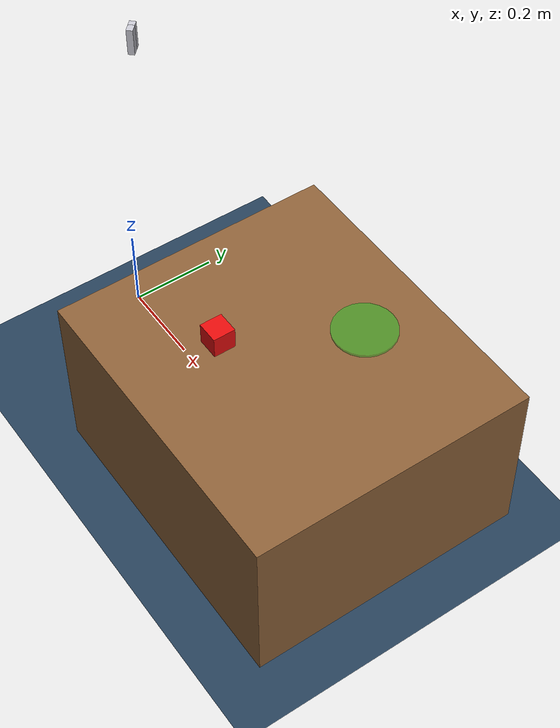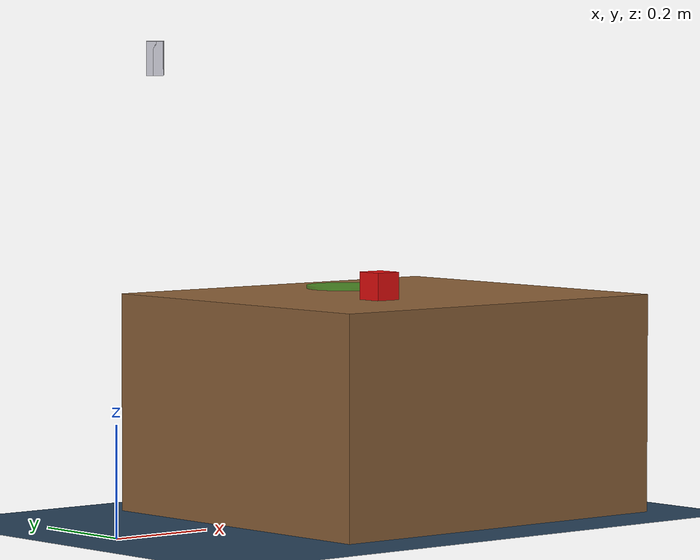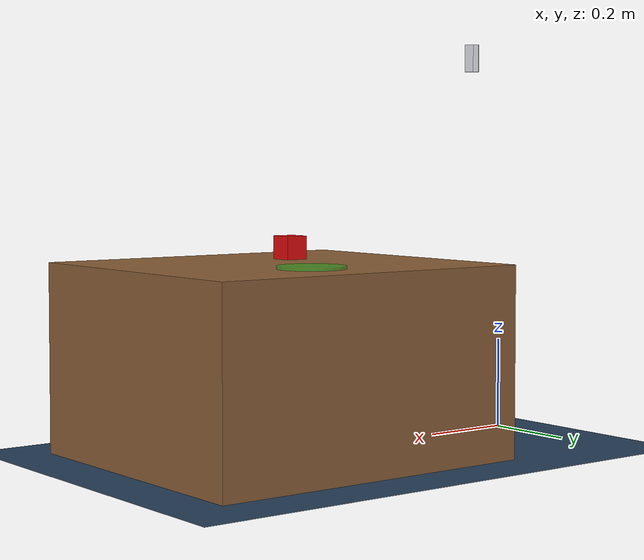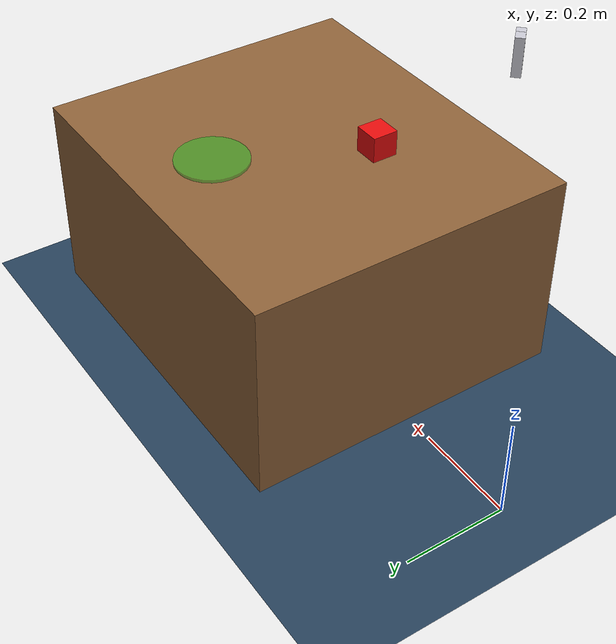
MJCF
<mujoco model="panda pick place">

  <include file="panda.xml"/>

  <statistic center="0.45 0 0.45" extent="1.2"/>

  <visual>
    <headlight diffuse="0.6 0.6 0.6" ambient="0.3 0.3 0.3" specular="0 0 0"/>
    <rgba haze="0.15 0.25 0.35 1"/>
    <global azimuth="120" elevation="-20"/>
  </visual>

  <asset>
    <texture type="skybox" builtin="gradient" rgb1="0.3 0.5 0.7" rgb2="0 0 0" width="512" height="3072"/>

    <texture type="2d" name="groundplane" builtin="checker" mark="edge"
             rgb1="0.2 0.3 0.4" rgb2="0.1 0.2 0.3"
             markrgb="0.8 0.8 0.8" width="300" height="300"/>

    <material name="groundplane" texture="groundplane" texuniform="true"
              texrepeat="5 5" reflectance="0.2"/>

    <material name="table_mat" rgba="0.55 0.38 0.22 1"/>
    <material name="red_cube_mat" rgba="0.9 0.05 0.05 1"/>
    <material name="green_target_mat" rgba="0.05 0.8 0.1 0.45"/>
  </asset>

  <worldbody>
    <light name="top_light" pos="0 0 1.5" mode="trackcom"/>

    <geom name="floor" size="0 0 0.05" type="plane" material="groundplane"/>

    <!-- Table.
        table center x = 0.62
        table half size x = 0.36
        table x range = [0.26, 0.98]
        table top height = 0.40
        This keeps the table away from the Panda base.
    -->
    <body name="table" pos="0.62 0 0.20">
      <geom name="table_top"
            type="box"
            size="0.36 0.32 0.20"
            material="table_mat"
            contype="1"
            conaffinity="1"
            friction="1.0 0.005 0.0001"/>
    </body>

    <!-- Red cube.
        cube half size = 0.025
        table top height = 0.40
        cube center z = 0.425
    -->
    <body name="red_cube" pos="0.52 -0.10 0.425">
      <freejoint name="red_cube_freejoint"/>
      <geom name="red_cube_geom"
            type="box"
            size="0.025 0.025 0.025"
            material="red_cube_mat"
            mass="0.03"
            contype="1"
            conaffinity="1"
            friction="1.5 0.01 0.0001"/>
    </body>

    <!-- Green target zone.
        Visual target only.
    -->
    <body name="green_target" pos="0.66 0.16 0.403">
      <geom name="green_target_geom"
            type="cylinder"
            size="0.07 0.003"
            material="green_target_mat"
            contype="0"
            conaffinity="0"/>
    </body>

    <!-- Top camera.
        Clear debug camera for dataset inspection.
    -->
    <camera name="top"
            pos="0.4584 0.0264 1.4694"
            xyaxes="1.0000 0.0000 -0.0088 -0.0001 1.0000 -0.0073"
            fovy="56.7"/>

    lookat = 0.4485 0.0182 0.3424

    <!-- Front camera.
        Oblique view, useful for image-based policy.
    -->
    <camera name="front"
            pos="1.00 -0.65 0.80"
            xyaxes="0.707 0.707 0 -0.408 0.408 0.816"
            fovy="50"/>

    <!-- Side debug camera.
        Useful for checking whether the gripper reaches cube height correctly.
    -->
    <camera name="side"
            pos="0.5442 -1.0704 0.8140"
            xyaxes="1.0000 0.0043 -0.0000 -0.0013 0.2898 0.9571"
            fovy="64.1"/>

    lookat = 0.5395 0.0105 0.4866

    <camera name="front_policy"
            pos="1.4000 0.0408 0.6777"
            xyaxes="-0.0060 1.0000 0.0000 -0.0255 -0.0002 0.9997"
            fovy="55.5"/>

    lookat = 0.4335 0.0350 0.6530

    <camera name="front_debug"
            pos="0.5442 -1.0704 0.8140"
            xyaxes="1.0000 0.0043 -0.0000 -0.0013 0.2898 0.9571"
            fovy="64.1"/>

    lookat = 0.5395 0.0105 0.4866

  </worldbody>

</mujoco>

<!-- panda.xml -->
<mujoco model="panda">
  <compiler angle="radian" meshdir="assets" autolimits="true"/>

  <option integrator="implicitfast"/>

  <default>
    <default class="panda">
      <joint armature="0.1" damping="1" axis="0 0 1" range="-2.8973 2.8973"/>
      <general dyntype="none" biastype="affine" ctrlrange="-2.8973 2.8973" forcerange="-87 87"/>
      <default class="finger">
        <joint axis="0 1 0" type="slide" range="0 0.04"/>
      </default>
      <default class="collision">
        <geom type="mesh" group="3"/>
        <default class="fingertip_pad_collision_1">
          <geom type="box" size="0.0085 0.004 0.0085" pos="0 0.0055 0.0445"/>
        </default>
        <default class="fingertip_pad_collision_2">
          <geom type="box" size="0.003 0.002 0.003" pos="0.0055 0.002 0.05"/>
        </default>
        <default class="fingertip_pad_collision_3">
          <geom type="box" size="0.003 0.002 0.003" pos="-0.0055 0.002 0.05"/>
        </default>
        <default class="fingertip_pad_collision_4">
          <geom type="box" size="0.003 0.002 0.0035" pos="0.0055 0.002 0.0395"/>
        </default>
        <default class="fingertip_pad_collision_5">
          <geom type="box" size="0.003 0.002 0.0035" pos="-0.0055 0.002 0.0395"/>
        </default>
      </default>
    </default>
  </default>

  <asset>
    <mesh name="link0_c" file="link0.stl"/>
    <mesh name="link1_c" file="link1.stl"/>
    <mesh name="link2_c" file="link2.stl"/>
    <mesh name="link3_c" file="link3.stl"/>
    <mesh name="link4_c" file="link4.stl"/>
    <mesh name="link5_c0" file="link5_collision_0.obj"/>
    <mesh name="link5_c1" file="link5_collision_1.obj"/>
    <mesh name="link5_c2" file="link5_collision_2.obj"/>
    <mesh name="link6_c" file="link6.stl"/>
    <mesh name="link7_c" file="link7.stl"/>
    <mesh name="hand_c" file="hand.stl"/>
  </asset>

  <worldbody>
    <body name="link0" childclass="panda">
      <inertial mass="0.629769" pos="-0.041018 -0.00014 0.049974"
        fullinertia="0.00315 0.00388 0.004285 8.2904e-7 0.00015 8.2299e-6"/>
      <geom mesh="link0_c" class="collision"/>
      <body name="link1" pos="0 0 0.333">
        <inertial mass="4.970684" pos="0.003875 0.002081 -0.04762"
          fullinertia="0.70337 0.70661 0.0091170 -0.00013900 0.0067720 0.019169"/>
        <joint name="joint1"/>
        <geom mesh="link1_c" class="collision"/>
        <body name="link2" quat="1 -1 0 0">
          <inertial mass="0.646926" pos="-0.003141 -0.02872 0.003495"
            fullinertia="0.0079620 2.8110e-2 2.5995e-2 -3.925e-3 1.0254e-2 7.04e-4"/>
          <joint name="joint2" range="-1.7628 1.7628"/>
          <geom mesh="link2_c" class="collision"/>
          <body name="link3" pos="0 -0.316 0" quat="1 1 0 0">
            <joint name="joint3"/>
            <inertial mass="3.228604" pos="2.7518e-2 3.9252e-2 -6.6502e-2"
              fullinertia="3.7242e-2 3.6155e-2 1.083e-2 -4.761e-3 -1.1396e-2 -1.2805e-2"/>
            <geom mesh="link3_c" class="collision"/>
            <body name="link4" pos="0.0825 0 0" quat="1 1 0 0">
              <inertial mass="3.587895" pos="-5.317e-2 1.04419e-1 2.7454e-2"
                fullinertia="2.5853e-2 1.9552e-2 2.8323e-2 7.796e-3 -1.332e-3 8.641e-3"/>
              <joint name="joint4" range="-3.0718 -0.0698"/>
              <geom mesh="link4_c" class="collision"/>
              <body name="link5" pos="-0.0825 0.384 0" quat="1 -1 0 0">
                <inertial mass="1.225946" pos="-1.1953e-2 4.1065e-2 -3.8437e-2"
                  fullinertia="3.5549e-2 2.9474e-2 8.627e-3 -2.117e-3 -4.037e-3 2.29e-4"/>
                <joint name="joint5"/>
                <geom mesh="link5_c0" class="collision"/>
                <geom mesh="link5_c1" class="collision"/>
                <geom mesh="link5_c2" class="collision"/>
                <body name="link6" quat="1 1 0 0">
                  <inertial mass="1.666555" pos="6.0149e-2 -1.4117e-2 -1.0517e-2"
                    fullinertia="1.964e-3 4.354e-3 5.433e-3 1.09e-4 -1.158e-3 3.41e-4"/>
                  <joint name="joint6" range="-0.0175 3.7525"/>
                  <geom mesh="link6_c" class="collision"/>
                  <body name="link7" pos="0.088 0 0" quat="1 1 0 0">
                    <inertial mass="7.35522e-01" pos="1.0517e-2 -4.252e-3 6.1597e-2"
                      fullinertia="1.2516e-2 1.0027e-2 4.815e-3 -4.28e-4 -1.196e-3 -7.41e-4"/>
                    <joint name="joint7"/>
                    <geom mesh="link7_c" class="collision"/>
                    <body name="hand" pos="0 0 0.107" quat="0.9238795 0 0 -0.3826834">
                      <inertial mass="0.73" pos="-0.01 0 0.03" diaginertia="0.001 0.0025 0.0017"/>
                      <geom mesh="hand_c" class="collision"/>
                      <body name="left_finger" pos="0 0 0.0584">
                        <inertial mass="0.015" pos="0 0 0" diaginertia="2.375e-6 2.375e-6 7.5e-7"/>
                        <joint name="finger_joint1" class="finger"/>
                        <geom type="box" size="0.007 0.009 0.03" pos="0 0.006 0.03"
                              rgba="0.78 0.78 0.82 1" group="2"
                              contype="0" conaffinity="0"/>
                        <geom class="fingertip_pad_collision_1"/>
                        <geom class="fingertip_pad_collision_2"/>
                        <geom class="fingertip_pad_collision_3"/>
                        <geom class="fingertip_pad_collision_4"/>
                        <geom class="fingertip_pad_collision_5"/>
                      </body>
                      <body name="right_finger" pos="0 0 0.0584" quat="0 0 0 1">
                        <inertial mass="0.015" pos="0 0 0" diaginertia="2.375e-6 2.375e-6 7.5e-7"/>
                        <joint name="finger_joint2" class="finger"/>
                        <geom type="box" size="0.007 0.009 0.03" pos="0 0.006 0.03"
                              rgba="0.78 0.78 0.82 1" group="2"
                              contype="0" conaffinity="0"/>
                        <geom class="fingertip_pad_collision_1"/>
                        <geom class="fingertip_pad_collision_2"/>
                        <geom class="fingertip_pad_collision_3"/>
                        <geom class="fingertip_pad_collision_4"/>
                        <geom class="fingertip_pad_collision_5"/>
                      </body>
                    </body>
                  </body>
                </body>
              </body>
            </body>
          </body>
        </body>
      </body>
    </body>
  </worldbody>

  <equality>
    <joint joint1="finger_joint1" joint2="finger_joint2" solimp="0.95 0.99 0.001" solref="0.005 1"/>
  </equality>

  <actuator>
    <general class="panda" name="actuator1" joint="joint1" gainprm="4500" biasprm="0 -4500 -450"/>
    <general class="panda" name="actuator2" joint="joint2" gainprm="4500" biasprm="0 -4500 -450"
      ctrlrange="-1.7628 1.7628"/>
    <general class="panda" name="actuator3" joint="joint3" gainprm="3500" biasprm="0 -3500 -350"/>
    <general class="panda" name="actuator4" joint="joint4" gainprm="3500" biasprm="0 -3500 -350"
      ctrlrange="-3.0718 -0.0698"/>
    <general class="panda" name="actuator5" joint="joint5" gainprm="2000" biasprm="0 -2000 -200" forcerange="-12 12"/>
    <general class="panda" name="actuator6" joint="joint6" gainprm="2000" biasprm="0 -2000 -200" forcerange="-12 12"
      ctrlrange="-0.0175 3.7525"/>
    <general class="panda" name="actuator7" joint="joint7" gainprm="2000" biasprm="0 -2000 -200" forcerange="-12 12"/>
    <!-- Simple position actuator on finger_joint1; finger_joint2 follows via equality.
         ctrl in [0, 0.04] is the primary finger's qpos = half the physical grip width. -->
    <position name="actuator8" joint="finger_joint1" kp="300" kv="15"
      ctrlrange="0 0.04" forcerange="-100 100"/>
  </actuator>

  <contact>
    <exclude body1="link0" body2="link1"/>
  </contact>
</mujoco>
